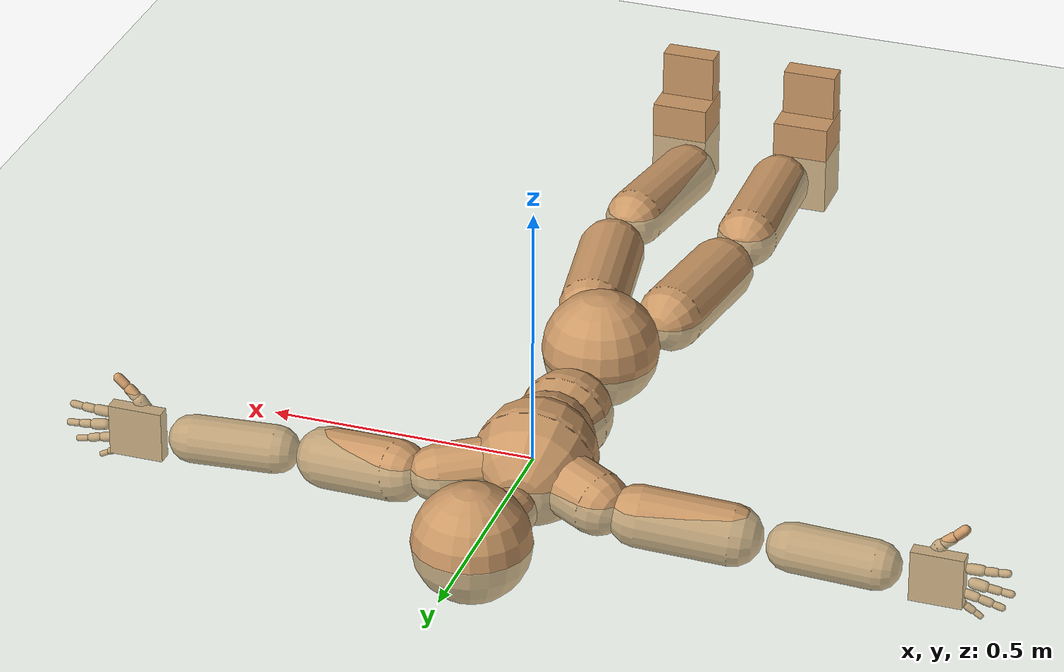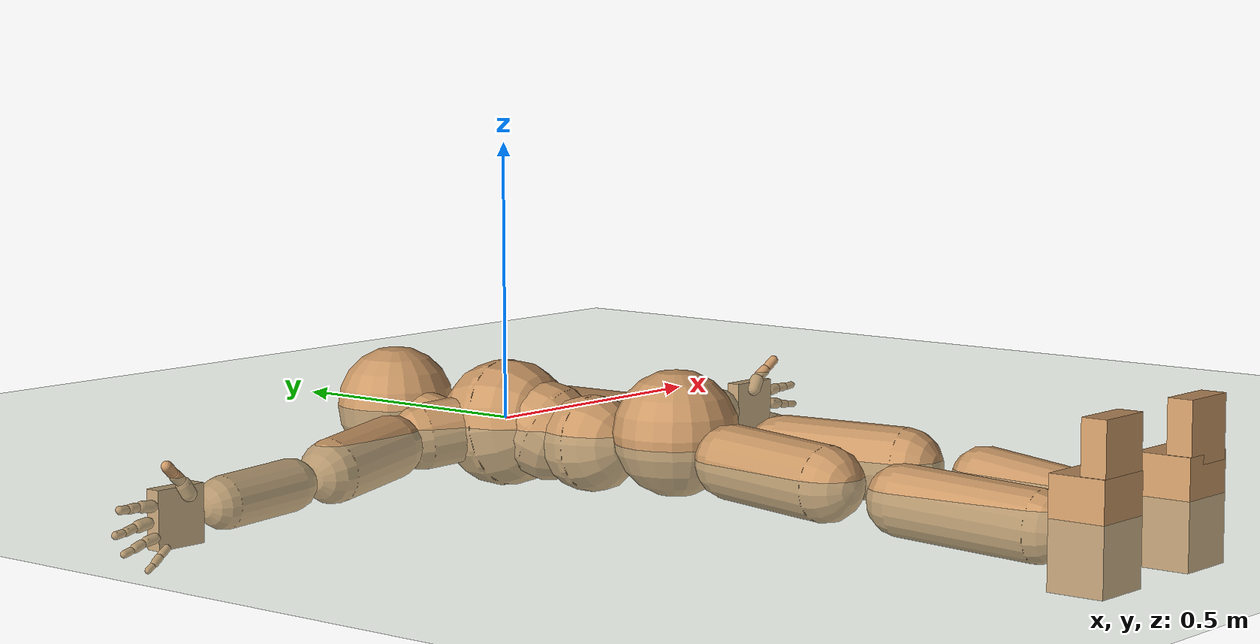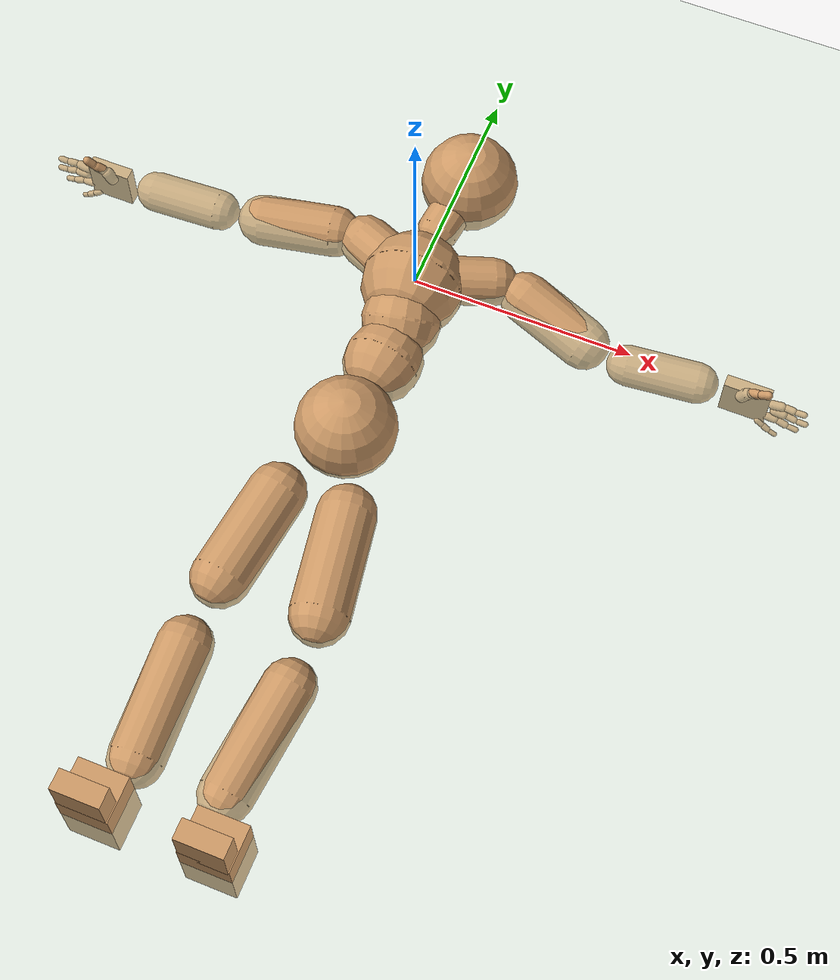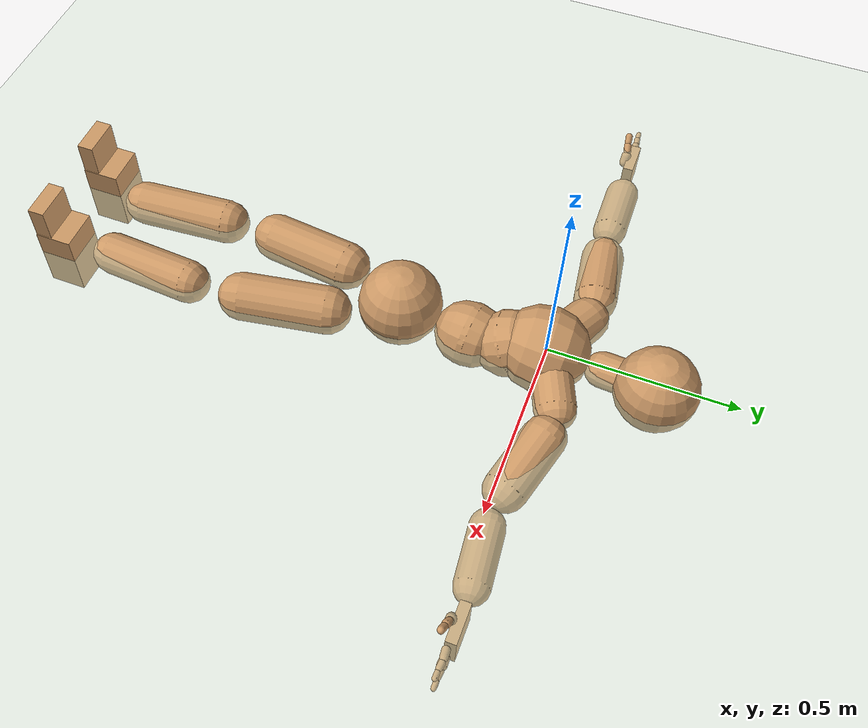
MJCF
<mujoco model="humanoid">
  <compiler coordinate="local"/>
  <default>
    <joint damping="0.0" armature="0.01" stiffness="0.0" limited="true"/>
    <geom conaffinity="1" condim="3" contype="7" margin="0.001" rgba="0.8 0.6 .4 1"/>
  </default>
  <asset>
    <texture type="skybox" builtin="gradient" rgb1=".4 .5 .6" rgb2="0 0 0" width="100" height="100"/>
    <texture builtin="flat" height="1278" mark="cross" markrgb="1 1 1" name="texgeom" random="0.01" rgb1="0.8 0.6 0.4" rgb2="0.8 0.6 0.4" type="cube" width="127"/>
    <texture builtin="checker" height="100" name="texplane" rgb1="0 0 0" rgb2="0.8 0.8 0.8" type="2d" width="100"/>
    <material name="MatPlane" reflectance="0.5" shininess="1" specular="1" texrepeat="60 60" texture="texplane"/>
    <material name="geom" texture="texgeom" texuniform="true"/>
  </asset>
  <worldbody>
    <light cutoff="100" diffuse="1 1 1" dir="-0 0 -1.3" directional="true" exponent="1" pos="0 0 1.3" specular=".1 .1 .1"/>
    <geom conaffinity="1" condim="3" name="floor" pos="0 0 0" rgba="0.8 0.9 0.8 1" size="100 100 .2" type="plane" material="MatPlane"/>
    <body name="Pelvis" pos="0.0033 -0.3978 0.0134">
      <freejoint name="Pelvis"/>
      <geom type="sphere" contype="1" conaffinity="1" density="4629.6296296296305" size="0.1112" pos="0.0000 0.0000 0.0000" name="Pelvis"/>
      <body name="L_Hip" pos="0.063 -0.1008 -0.0246">
        <joint name="L_Hip_x" type="hinge" pos="0 0 0" axis="1 0 0" user="250 2.5 1 500 10 2" armature="0.01" range="-90.0000 90.0000" damping="0" stiffness="0"/>
        <joint name="L_Hip_y" type="hinge" pos="0 0 0" axis="0 1 0" user="250 2.5 1 500 10 2" armature="0.01" range="-90.0000 90.0000" damping="0" stiffness="0"/>
        <joint name="L_Hip_z" type="hinge" pos="0 0 0" axis="0 0 1" user="250 2.5 1 500 10 2" armature="0.01" range="-90.0000 90.0000" damping="0" stiffness="0"/>
        <geom type="capsule" contype="1" conaffinity="1" density="2040.816327" fromto="0.0125 -0.0763 -0.0008 0.0499 -0.3052 -0.0033" size="0.0651" name="L_Hip"/>
        <body name="L_Knee" pos="0.0623 -0.3815 -0.0041">
          <joint name="L_Knee_x" type="hinge" pos="0 0 0" axis="1 0 0" user="250 2.5 1 500 10 2" armature="0.01" range="-180.0000 180.0000" damping="0" stiffness="0"/>
          <joint name="L_Knee_y" type="hinge" pos="0 0 0" axis="0 1 0" user="250 2.5 1 500 10 2" armature="0.01" range="-5.6250 5.6250" damping="0" stiffness="0"/>
          <joint name="L_Knee_z" type="hinge" pos="0 0 0" axis="0 0 1" user="250 2.5 1 500 10 2" armature="0.01" range="-5.6250 5.6250" damping="0" stiffness="0"/>
          <geom type="capsule" contype="1" conaffinity="1" density="1234.567901" fromto="-0.0096 -0.0825 -0.0067 -0.0385 -0.3302 -0.0270" size="0.0579" name="L_Knee"/>
          <body name="L_Ankle" pos="-0.0481 -0.4127 -0.0337">
            <joint name="L_Ankle_x" type="hinge" pos="0 0 0" axis="1 0 0" user="150 2.5 1 500 10 2" armature="0.01" range="-90.0000 90.0000" damping="0" stiffness="0"/>
            <joint name="L_Ankle_y" type="hinge" pos="0 0 0" axis="0 1 0" user="150 2.5 1 500 10 2" armature="0.01" range="-90.0000 90.0000" damping="0" stiffness="0"/>
            <joint name="L_Ankle_z" type="hinge" pos="0 0 0" axis="0 0 1" user="150 2.5 1 500 10 2" armature="0.01" range="-90.0000 90.0000" damping="0" stiffness="0"/>
            <geom type="box" density="458.480626" pos="0.0462 -0.0299 0.0242" size="0.0551 0.0494 0.0916" quat="1.0000 0.0000 0.0000 0.0000" name="L_Ankle"/>
            <body name="L_Toe" pos="0.0538 -0.0602 0.1257">
              <joint name="L_Toe_x" type="hinge" pos="0 0 0" axis="1 0 0" user="150 1 1 500 1 1" armature="0.01" range="-90.0000 90.0000" damping="0" stiffness="0"/>
              <joint name="L_Toe_y" type="hinge" pos="0 0 0" axis="0 1 0" user="150 1 1 500 1 1" armature="0.01" range="-45.0000 45.0000" damping="0" stiffness="0"/>
              <joint name="L_Toe_z" type="hinge" pos="0 0 0" axis="0 0 1" user="150 1 1 500 1 1" armature="0.01" range="-45.0000 45.0000" damping="0" stiffness="0"/>
              <geom type="box" density="423.29257" pos="-0.0076 0.0031 0.0272" size="0.0524 0.0222 0.0532" quat="1.0000 0.0000 0.0000 0.0000" name="L_Toe"/>
            </body>
          </body>
        </body>
      </body>
      <body name="R_Hip" pos="-0.0679 -0.1138 -0.0178">
        <joint name="R_Hip_x" type="hinge" pos="0 0 0" axis="1 0 0" user="250 2.5 1 500 10 2" armature="0.01" range="-90.0000 90.0000" damping="0" stiffness="0"/>
        <joint name="R_Hip_y" type="hinge" pos="0 0 0" axis="0 1 0" user="250 2.5 1 500 10 2" armature="0.01" range="-90.0000 90.0000" damping="0" stiffness="0"/>
        <joint name="R_Hip_z" type="hinge" pos="0 0 0" axis="0 0 1" user="250 2.5 1 500 10 2" armature="0.01" range="-90.0000 90.0000" damping="0" stiffness="0"/>
        <geom type="capsule" contype="1" conaffinity="1" density="2040.816327" fromto="-0.0103 -0.0726 -0.0027 -0.0410 -0.2906 -0.0109" size="0.0645" name="R_Hip"/>
        <body name="R_Knee" pos="-0.0513 -0.3632 -0.0136">
          <joint name="R_Knee_x" type="hinge" pos="0 0 0" axis="1 0 0" user="250 2.5 1 500 10 2" armature="0.01" range="-180.0000 180.0000" damping="0" stiffness="0"/>
          <joint name="R_Knee_y" type="hinge" pos="0 0 0" axis="0 1 0" user="250 2.5 1 500 10 2" armature="0.01" range="-5.6250 5.6250" damping="0" stiffness="0"/>
          <joint name="R_Knee_z" type="hinge" pos="0 0 0" axis="0 0 1" user="250 2.5 1 500 10 2" armature="0.01" range="-5.6250 5.6250" damping="0" stiffness="0"/>
          <geom type="capsule" contype="1" conaffinity="1" density="1234.567901" fromto="0.0033 -0.0841 -0.0042 0.0130 -0.3365 -0.0167" size="0.0597" name="R_Knee"/>
          <body name="R_Ankle" pos="0.0163 -0.4206 -0.0209">
            <joint name="R_Ankle_x" type="hinge" pos="0 0 0" axis="1 0 0" user="150 1 1 500 10 2" armature="0.01" range="-90.0000 90.0000" damping="0" stiffness="0"/>
            <joint name="R_Ankle_y" type="hinge" pos="0 0 0" axis="0 1 0" user="150 1 1 500 10 2" armature="0.01" range="-90.0000 90.0000" damping="0" stiffness="0"/>
            <joint name="R_Ankle_z" type="hinge" pos="0 0 0" axis="0 0 1" user="150 1 1 500 10 2" armature="0.01" range="-90.0000 90.0000" damping="0" stiffness="0"/>
            <geom type="box" density="458.47228" pos="-0.0270 -0.0274 0.0142" size="0.0551 0.0494 0.0916" quat="1.0000 0.0000 0.0000 0.0000" name="R_Ankle"/>
            <body name="R_Toe" pos="-0.0433 -0.0602 0.1264">
              <joint name="R_Toe_x" type="hinge" pos="0 0 0" axis="1 0 0" user="150 1 1 500 1 1" armature="0.01" range="-90.0000 90.0000" damping="0" stiffness="0"/>
              <joint name="R_Toe_y" type="hinge" pos="0 0 0" axis="0 1 0" user="150 1 1 500 1 1" armature="0.01" range="-45.0000 45.0000" damping="0" stiffness="0"/>
              <joint name="R_Toe_z" type="hinge" pos="0 0 0" axis="0 0 1" user="150 1 1 500 1 1" armature="0.01" range="-45.0000 45.0000" damping="0" stiffness="0"/>
              <geom type="box" density="423.283154" pos="0.0163 0.0057 0.0165" size="0.0524 0.0222 0.0532" quat="1.0000 0.0000 0.0000 0.0000" name="R_Toe"/>
            </body>
          </body>
        </body>
      </body>
      <body name="Torso" pos="-0.0033 0.1209 -0.0354">
        <joint name="Torso_x" type="hinge" pos="0 0 0" axis="1 0 0" user="500 5 1 500 10 2" armature="0.01" range="-60.0000 60.0000" damping="0" stiffness="0"/>
        <joint name="Torso_y" type="hinge" pos="0 0 0" axis="0 1 0" user="500 5 1 500 10 2" armature="0.01" range="-60.0000 60.0000" damping="0" stiffness="0"/>
        <joint name="Torso_z" type="hinge" pos="0 0 0" axis="0 0 1" user="500 5 1 500 10 2" armature="0.01" range="-60.0000 60.0000" damping="0" stiffness="0"/>
        <geom type="capsule" contype="1" conaffinity="1" density="2040.816327" fromto="0.0057 0.0667 -0.0034 0.0070 0.0815 -0.0041" size="0.0861" name="Torso"/>
        <body name="Spine" pos="0.0127 0.1483 -0.0075">
          <joint name="Spine_x" type="hinge" pos="0 0 0" axis="1 0 0" user="500 5 1 500 10 2" armature="0.01" range="-60.0000 60.0000" damping="0" stiffness="0"/>
          <joint name="Spine_y" type="hinge" pos="0 0 0" axis="0 1 0" user="500 5 1 500 10 2" armature="0.01" range="-60.0000 60.0000" damping="0" stiffness="0"/>
          <joint name="Spine_z" type="hinge" pos="0 0 0" axis="0 0 1" user="500 5 1 500 10 2" armature="0.01" range="-60.0000 60.0000" damping="0" stiffness="0"/>
          <geom type="capsule" contype="1" conaffinity="1" density="2040.816327" fromto="-0.0058 0.0274 0.0140 -0.0070 0.0335 0.0171" size="0.0882" name="Spine"/>
          <body name="Chest" pos="-0.0128 0.0609 0.0311">
            <joint name="Chest_x" type="hinge" pos="0 0 0" axis="1 0 0" user="500 5 1 500 10 2" armature="0.01" range="-60.0000 60.0000" damping="0" stiffness="0"/>
            <joint name="Chest_y" type="hinge" pos="0 0 0" axis="0 1 0" user="500 5 1 500 10 2" armature="0.01" range="-60.0000 60.0000" damping="0" stiffness="0"/>
            <joint name="Chest_z" type="hinge" pos="0 0 0" axis="0 0 1" user="500 5 1 500 10 2" armature="0.01" range="-60.0000 60.0000" damping="0" stiffness="0"/>
            <geom type="capsule" contype="1" conaffinity="1" density="2040.816327" fromto="-0.0029 0.0551 -0.0073 -0.0035 0.0673 -0.0089" size="0.1145" name="Chest"/>
            <body name="Neck" pos="-0.0148 0.1819 -0.0311">
              <joint name="Neck_x" type="hinge" pos="0 0 0" axis="1 0 0" user="150 1 1 250 50 4" armature="0.01" range="-180.0000 180.0000" damping="0" stiffness="0"/>
              <joint name="Neck_y" type="hinge" pos="0 0 0" axis="0 1 0" user="150 1 1 250 50 4" armature="0.01" range="-180.0000 180.0000" damping="0" stiffness="0"/>
              <joint name="Neck_z" type="hinge" pos="0 0 0" axis="0 0 1" user="150 1 1 250 50 4" armature="0.01" range="-180.0000 180.0000" damping="0" stiffness="0"/>
              <geom type="capsule" contype="1" conaffinity="1" density="1000" fromto="0.0057 0.0355 0.0049 0.0228 0.1419 0.0197" size="0.0477" name="Neck"/>
              <body name="Head" pos="0.0285 0.1774 0.0246">
                <joint name="Head_x" type="hinge" pos="0 0 0" axis="1 0 0" user="150 1 1 250 50 4" armature="0.01" range="-90.0000 90.0000" damping="0" stiffness="0"/>
                <joint name="Head_y" type="hinge" pos="0 0 0" axis="0 1 0" user="150 1 1 250 50 4" armature="0.01" range="-90.0000 90.0000" damping="0" stiffness="0"/>
                <joint name="Head_z" type="hinge" pos="0 0 0" axis="0 0 1" user="150 1 1 250 50 4" armature="0.01" range="-90.0000 90.0000" damping="0" stiffness="0"/>
                <geom type="sphere" contype="1" conaffinity="1" density="1000" size="0.1095" pos="0.0000 0.0000 0.0000" name="Head"/>
              </body>
            </body>
            <body name="L_Thorax" pos="0.0495 0.0931 -0.0055">
              <joint name="L_Thorax_x" type="hinge" pos="0 0 0" axis="1 0 0" user="200 2 1 500 50 4" armature="0.01" range="-180.0000 180.0000" damping="0" stiffness="0"/>
              <joint name="L_Thorax_y" type="hinge" pos="0 0 0" axis="0 1 0" user="200 2 1 500 50 4" armature="0.01" range="-180.0000 180.0000" damping="0" stiffness="0"/>
              <joint name="L_Thorax_z" type="hinge" pos="0 0 0" axis="0 0 1" user="200 2 1 500 50 4" armature="0.01" range="-180.0000 180.0000" damping="0" stiffness="0"/>
              <geom type="capsule" contype="1" conaffinity="1" density="1000" fromto="0.0266 0.0117 -0.0036 0.1064 0.0467 -0.0143" size="0.0542" name="L_Thorax"/>
              <body name="L_Shoulder" pos="0.133 0.0583 -0.0179">
                <joint name="L_Shoulder_x" type="hinge" pos="0 0 0" axis="1 0 0" user="200 2 1 500 50 4" armature="0.01" range="-180.0000 180.0000" damping="0" stiffness="0"/>
                <joint name="L_Shoulder_y" type="hinge" pos="0 0 0" axis="0 1 0" user="200 2 1 500 50 4" armature="0.01" range="-180.0000 180.0000" damping="0" stiffness="0"/>
                <joint name="L_Shoulder_z" type="hinge" pos="0 0 0" axis="0 0 1" user="200 2 1 500 50 4" armature="0.01" range="-180.0000 180.0000" damping="0" stiffness="0"/>
                <geom type="capsule" contype="1" conaffinity="1" density="1000" fromto="0.0519 -0.0153 -0.0097 0.2074 -0.0610 -0.0387" size="0.0577" name="L_Shoulder"/>
                <body name="L_Elbow" pos="0.2593 -0.0763 -0.0483">
                  <joint name="L_Elbow_x" type="hinge" pos="0 0 0" axis="1 0 0" user="150 1 1 150 10 2" armature="0.01" range="-720.0000 720.0000" damping="0" stiffness="0"/>
                  <joint name="L_Elbow_y" type="hinge" pos="0 0 0" axis="0 1 0" user="150 1 1 150 10 2" armature="0.01" range="-720.0000 720.0000" damping="0" stiffness="0"/>
                  <joint name="L_Elbow_z" type="hinge" pos="0 0 0" axis="0 0 1" user="150 1 1 150 10 2" armature="0.01" range="-720.0000 720.0000" damping="0" stiffness="0"/>
                  <geom type="capsule" contype="1" conaffinity="1" density="1000" fromto="0.0528 0.0052 0.0002 0.2111 0.0206 0.0010" size="0.0454" name="L_Elbow"/>
                  <body name="L_Wrist" pos="0.2639 0.0258 0.0012">
                    <joint name="L_Wrist_x" type="hinge" pos="0 0 0" axis="1 0 0" user="100 1 1 150 1 1" armature="0.01" range="-180.0000 180.0000" damping="0" stiffness="0"/>
                    <joint name="L_Wrist_y" type="hinge" pos="0 0 0" axis="0 1 0" user="100 1 1 150 1 1" armature="0.01" range="-180.0000 180.0000" damping="0" stiffness="0"/>
                    <joint name="L_Wrist_z" type="hinge" pos="0 0 0" axis="0 0 1" user="100 1 1 150 1 1" armature="0.01" range="-180.0000 180.0000" damping="0" stiffness="0"/>
                    <geom type="box" density="1215.894212" pos="0.0564 -0.0015 -0.0028" size="0.0521 0.0139 0.0503" quat="1.0000 0.0000 0.0000 0.0000" name="L_Wrist"/>
                    <body name="L_Index1" pos="0.1096 -0.0086 0.0214">
                      <joint name="L_Index1_x" type="hinge" pos="0 0 0" axis="1 0 0" user="100 10 1 150" armature="0.01" range="-180.0000 180.0000" damping="0" stiffness="0"/>
                      <joint name="L_Index1_y" type="hinge" pos="0 0 0" axis="0 1 0" user="100 10 1 150" armature="0.01" range="-180.0000 180.0000" damping="0" stiffness="0"/>
                      <joint name="L_Index1_z" type="hinge" pos="0 0 0" axis="0 0 1" user="100 10 1 150" armature="0.01" range="-180.0000 180.0000" damping="0" stiffness="0"/>
                      <geom type="capsule" contype="1" conaffinity="1" density="1000" fromto="0.0067 0.0005 0.0006 0.0268 0.0021 0.0023" size="0.0101" name="L_Index1"/>
                      <body name="L_Index2" pos="0.0335 0.0027 0.0029">
                        <joint name="L_Index2_x" type="hinge" pos="0 0 0" axis="1 0 0" user="100 10 1 150" armature="0.01" range="-180.0000 180.0000" damping="0" stiffness="0"/>
                        <joint name="L_Index2_y" type="hinge" pos="0 0 0" axis="0 1 0" user="100 10 1 150" armature="0.01" range="-180.0000 180.0000" damping="0" stiffness="0"/>
                        <joint name="L_Index2_z" type="hinge" pos="0 0 0" axis="0 0 1" user="100 10 1 150" armature="0.01" range="-180.0000 180.0000" damping="0" stiffness="0"/>
                        <geom type="capsule" contype="1" conaffinity="1" density="1000" fromto="0.0047 -0.0005 -0.0001 0.0188 -0.0020 -0.0002" size="0.0083" name="L_Index2"/>
                        <body name="L_Index3" pos="0.0235 -0.0025 -0.0003">
                          <joint name="L_Index3_x" type="hinge" pos="0 0 0" axis="1 0 0" user="100 10 1 150" armature="0.01" range="-180.0000 180.0000" damping="0" stiffness="0"/>
                          <joint name="L_Index3_y" type="hinge" pos="0 0 0" axis="0 1 0" user="100 10 1 150" armature="0.01" range="-180.0000 180.0000" damping="0" stiffness="0"/>
                          <joint name="L_Index3_z" type="hinge" pos="0 0 0" axis="0 0 1" user="100 10 1 150" armature="0.01" range="-180.0000 180.0000" damping="0" stiffness="0"/>
                          <geom type="capsule" contype="1" conaffinity="1" density="1000" fromto="0.0051 -0.0001 0.0003 0.0204 -0.0004 0.0014" size="0.0069" name="L_Index3"/>
                        </body>
                      </body>
                    </body>
                    <body name="L_Middle1" pos="0.1178 -0.006 -0.0042">
                      <joint name="L_Middle1_x" type="hinge" pos="0 0 0" axis="1 0 0" user="100 10 1 150" armature="0.01" range="-180.0000 180.0000" damping="0" stiffness="0"/>
                      <joint name="L_Middle1_y" type="hinge" pos="0 0 0" axis="0 1 0" user="100 10 1 150" armature="0.01" range="-180.0000 180.0000" damping="0" stiffness="0"/>
                      <joint name="L_Middle1_z" type="hinge" pos="0 0 0" axis="0 0 1" user="100 10 1 150" armature="0.01" range="-180.0000 180.0000" damping="0" stiffness="0"/>
                      <geom type="capsule" contype="1" conaffinity="1" density="1000" fromto="0.0064 0.0002 -0.0008 0.0257 0.0008 -0.0033" size="0.0104" name="L_Middle1"/>
                      <body name="L_Middle2" pos="0.0321 0.001 -0.0042">
                        <joint name="L_Middle2_x" type="hinge" pos="0 0 0" axis="1 0 0" user="100 10 1 150" armature="0.01" range="-180.0000 180.0000" damping="0" stiffness="0"/>
                        <joint name="L_Middle2_y" type="hinge" pos="0 0 0" axis="0 1 0" user="100 10 1 150" armature="0.01" range="-180.0000 180.0000" damping="0" stiffness="0"/>
                        <joint name="L_Middle2_z" type="hinge" pos="0 0 0" axis="0 0 1" user="100 10 1 150" armature="0.01" range="-180.0000 180.0000" damping="0" stiffness="0"/>
                        <geom type="capsule" contype="1" conaffinity="1" density="1000" fromto="0.0049 -0.0004 -0.0009 0.0196 -0.0018 -0.0035" size="0.0077" name="L_Middle2"/>
                        <body name="L_Middle3" pos="0.0244 -0.0022 -0.0044">
                          <joint name="L_Middle3_x" type="hinge" pos="0 0 0" axis="1 0 0" user="100 10 1 150" armature="0.01" range="-180.0000 180.0000" damping="0" stiffness="0"/>
                          <joint name="L_Middle3_y" type="hinge" pos="0 0 0" axis="0 1 0" user="100 10 1 150" armature="0.01" range="-180.0000 180.0000" damping="0" stiffness="0"/>
                          <joint name="L_Middle3_z" type="hinge" pos="0 0 0" axis="0 0 1" user="100 10 1 150" armature="0.01" range="-180.0000 180.0000" damping="0" stiffness="0"/>
                          <geom type="capsule" contype="1" conaffinity="1" density="1000" fromto="0.0053 -0.0000 -0.0005 0.0212 -0.0002 -0.0019" size="0.0066" name="L_Middle3"/>
                        </body>
                      </body>
                    </body>
                    <body name="L_Pinky1" pos="0.091 -0.0154 -0.0476">
                      <joint name="L_Pinky1_x" type="hinge" pos="0 0 0" axis="1 0 0" user="100 10 1 150" armature="0.01" range="-180.0000 180.0000" damping="0" stiffness="0"/>
                      <joint name="L_Pinky1_y" type="hinge" pos="0 0 0" axis="0 1 0" user="100 10 1 150" armature="0.01" range="-180.0000 180.0000" damping="0" stiffness="0"/>
                      <joint name="L_Pinky1_z" type="hinge" pos="0 0 0" axis="0 0 1" user="100 10 1 150" armature="0.01" range="-180.0000 180.0000" damping="0" stiffness="0"/>
                      <geom type="capsule" contype="1" conaffinity="1" density="1000" fromto="0.0034 -0.0003 -0.0025 0.0136 -0.0011 -0.0100" size="0.0073" name="L_Pinky1"/>
                      <body name="L_Pinky2" pos="0.017 -0.0014 -0.0126">
                        <joint name="L_Pinky2_x" type="hinge" pos="0 0 0" axis="1 0 0" user="100 10 1 150" armature="0.01" range="-180.0000 180.0000" damping="0" stiffness="0"/>
                        <joint name="L_Pinky2_y" type="hinge" pos="0 0 0" axis="0 1 0" user="100 10 1 150" armature="0.01" range="-180.0000 180.0000" damping="0" stiffness="0"/>
                        <joint name="L_Pinky2_z" type="hinge" pos="0 0 0" axis="0 0 1" user="100 10 1 150" armature="0.01" range="-180.0000 180.0000" damping="0" stiffness="0"/>
                        <geom type="capsule" contype="1" conaffinity="1" density="1000" fromto="0.0033 -0.0004 -0.0023 0.0133 -0.0016 -0.0092" size="0.007" name="L_Pinky2"/>
                        <body name="L_Pinky3" pos="0.0166 -0.002 -0.0115">
                          <joint name="L_Pinky3_x" type="hinge" pos="0 0 0" axis="1 0 0" user="100 10 1 150" armature="0.01" range="-180.0000 180.0000" damping="0" stiffness="0"/>
                          <joint name="L_Pinky3_y" type="hinge" pos="0 0 0" axis="0 1 0" user="100 10 1 150" armature="0.01" range="-180.0000 180.0000" damping="0" stiffness="0"/>
                          <joint name="L_Pinky3_z" type="hinge" pos="0 0 0" axis="0 0 1" user="100 10 1 150" armature="0.01" range="-180.0000 180.0000" damping="0" stiffness="0"/>
                          <geom type="capsule" contype="1" conaffinity="1" density="1000" fromto="0.0037 -0.0000 -0.0019 0.0149 -0.0000 -0.0076" size="0.0053" name="L_Pinky3"/>
                        </body>
                      </body>
                    </body>
                    <body name="L_Ring1" pos="0.1053 -0.0093 -0.0298">
                      <joint name="L_Ring1_x" type="hinge" pos="0 0 0" axis="1 0 0" user="100 10 1 150" armature="0.01" range="-180.0000 180.0000" damping="0" stiffness="0"/>
                      <joint name="L_Ring1_y" type="hinge" pos="0 0 0" axis="0 1 0" user="100 10 1 150" armature="0.01" range="-180.0000 180.0000" damping="0" stiffness="0"/>
                      <joint name="L_Ring1_z" type="hinge" pos="0 0 0" axis="0 0 1" user="100 10 1 150" armature="0.01" range="-180.0000 180.0000" damping="0" stiffness="0"/>
                      <geom type="capsule" contype="1" conaffinity="1" density="1000" fromto="0.0060 0.0003 -0.0011 0.0239 0.0014 -0.0044" size="0.0088" name="L_Ring1"/>
                      <body name="L_Ring2" pos="0.0299 0.0017 -0.0055">
                        <joint name="L_Ring2_x" type="hinge" pos="0 0 0" axis="1 0 0" user="100 10 1 150" armature="0.01" range="-180.0000 180.0000" damping="0" stiffness="0"/>
                        <joint name="L_Ring2_y" type="hinge" pos="0 0 0" axis="0 1 0" user="100 10 1 150" armature="0.01" range="-180.0000 180.0000" damping="0" stiffness="0"/>
                        <joint name="L_Ring2_z" type="hinge" pos="0 0 0" axis="0 0 1" user="100 10 1 150" armature="0.01" range="-180.0000 180.0000" damping="0" stiffness="0"/>
                        <geom type="capsule" contype="1" conaffinity="1" density="1000" fromto="0.0048 -0.0003 -0.0015 0.0192 -0.0014 -0.0060" size="0.008" name="L_Ring2"/>
                        <body name="L_Ring3" pos="0.024 -0.0017 -0.0075">
                          <joint name="L_Ring3_x" type="hinge" pos="0 0 0" axis="1 0 0" user="100 10 1 150" armature="0.01" range="-180.0000 180.0000" damping="0" stiffness="0"/>
                          <joint name="L_Ring3_y" type="hinge" pos="0 0 0" axis="0 1 0" user="100 10 1 150" armature="0.01" range="-180.0000 180.0000" damping="0" stiffness="0"/>
                          <joint name="L_Ring3_z" type="hinge" pos="0 0 0" axis="0 0 1" user="100 10 1 150" armature="0.01" range="-180.0000 180.0000" damping="0" stiffness="0"/>
                          <geom type="capsule" contype="1" conaffinity="1" density="1000" fromto="0.0052 0.0001 -0.0011 0.0208 0.0002 -0.0044" size="0.0062" name="L_Ring3"/>
                        </body>
                      </body>
                    </body>
                    <body name="L_Thumb1" pos="0.0436 -0.0205 0.029">
                      <joint name="L_Thumb1_x" type="hinge" pos="0 0 0" axis="1 0 0" user="100 10 1 150" armature="0.01" range="-180.0000 180.0000" damping="0" stiffness="0"/>
                      <joint name="L_Thumb1_y" type="hinge" pos="0 0 0" axis="0 1 0" user="100 10 1 150" armature="0.01" range="-180.0000 180.0000" damping="0" stiffness="0"/>
                      <joint name="L_Thumb1_z" type="hinge" pos="0 0 0" axis="0 0 1" user="100 10 1 150" armature="0.01" range="-180.0000 180.0000" damping="0" stiffness="0"/>
                      <geom type="capsule" contype="1" conaffinity="1" density="1000" fromto="0.0036 0.0003 0.0054 0.0144 0.0012 0.0217" size="0.0134" name="L_Thumb1"/>
                      <body name="L_Thumb2" pos="0.018 0.0016 0.0271">
                        <joint name="L_Thumb2_x" type="hinge" pos="0 0 0" axis="1 0 0" user="100 10 1 150" armature="0.01" range="-180.0000 180.0000" damping="0" stiffness="0"/>
                        <joint name="L_Thumb2_y" type="hinge" pos="0 0 0" axis="0 1 0" user="100 10 1 150" armature="0.01" range="-180.0000 180.0000" damping="0" stiffness="0"/>
                        <joint name="L_Thumb2_z" type="hinge" pos="0 0 0" axis="0 0 1" user="100 10 1 150" armature="0.01" range="-180.0000 180.0000" damping="0" stiffness="0"/>
                        <geom type="capsule" contype="1" conaffinity="1" density="1000" fromto="0.0044 -0.0011 0.0033 0.0174 -0.0044 0.0130" size="0.0106" name="L_Thumb2"/>
                        <body name="L_Thumb3" pos="0.0218 -0.0055 0.0163">
                          <joint name="L_Thumb3_x" type="hinge" pos="0 0 0" axis="1 0 0" user="100 10 1 150" armature="0.01" range="-180.0000 180.0000" damping="0" stiffness="0"/>
                          <joint name="L_Thumb3_y" type="hinge" pos="0 0 0" axis="0 1 0" user="100 10 1 150" armature="0.01" range="-180.0000 180.0000" damping="0" stiffness="0"/>
                          <joint name="L_Thumb3_z" type="hinge" pos="0 0 0" axis="0 0 1" user="100 10 1 150" armature="0.01" range="-180.0000 180.0000" damping="0" stiffness="0"/>
                          <geom type="capsule" contype="1" conaffinity="1" density="1000" fromto="0.0048 -0.0007 0.0037 0.0190 -0.0028 0.0146" size="0.0094" name="L_Thumb3"/>
                        </body>
                      </body>
                    </body>
                  </body>
                </body>
              </body>
            </body>
            <body name="R_Thorax" pos="-0.0538 0.0922 -0.0119">
              <joint name="R_Thorax_x" type="hinge" pos="0 0 0" axis="1 0 0" user="200 2 1 150 10 2" armature="0.01" range="-180.0000 180.0000" damping="0" stiffness="0"/>
              <joint name="R_Thorax_y" type="hinge" pos="0 0 0" axis="0 1 0" user="200 2 1 150 10 2" armature="0.01" range="-180.0000 180.0000" damping="0" stiffness="0"/>
              <joint name="R_Thorax_z" type="hinge" pos="0 0 0" axis="0 0 1" user="200 2 1 150 10 2" armature="0.01" range="-180.0000 180.0000" damping="0" stiffness="0"/>
              <geom type="capsule" contype="1" conaffinity="1" density="1000" fromto="-0.0230 0.0108 -0.0032 -0.0918 0.0433 -0.0126" size="0.0595" name="R_Thorax"/>
              <body name="R_Shoulder" pos="-0.1148 0.0541 -0.0158">
                <joint name="R_Shoulder_x" type="hinge" pos="0 0 0" axis="1 0 0" user="200 2 1 250 10 2" armature="0.01" range="-180.0000 180.0000" damping="0" stiffness="0"/>
                <joint name="R_Shoulder_y" type="hinge" pos="0 0 0" axis="0 1 0" user="200 2 1 250 10 2" armature="0.01" range="-180.0000 180.0000" damping="0" stiffness="0"/>
                <joint name="R_Shoulder_z" type="hinge" pos="0 0 0" axis="0 0 1" user="200 2 1 250 10 2" armature="0.01" range="-180.0000 180.0000" damping="0" stiffness="0"/>
                <geom type="capsule" contype="1" conaffinity="1" density="1000" fromto="-0.0556 -0.0073 -0.0060 -0.2223 -0.0291 -0.0241" size="0.0576" name="R_Shoulder"/>
                <body name="R_Elbow" pos="-0.2779 -0.0364 -0.0301">
                  <joint name="R_Elbow_x" type="hinge" pos="0 0 0" axis="1 0 0" user="150 1 1 150 10 2" armature="0.01" range="-720.0000 720.0000" damping="0" stiffness="0"/>
                  <joint name="R_Elbow_y" type="hinge" pos="0 0 0" axis="0 1 0" user="150 1 1 150 10 2" armature="0.01" range="-720.0000 720.0000" damping="0" stiffness="0"/>
                  <joint name="R_Elbow_z" type="hinge" pos="0 0 0" axis="0 0 1" user="150 1 1 150 10 2" armature="0.01" range="-720.0000 720.0000" damping="0" stiffness="0"/>
                  <geom type="capsule" contype="1" conaffinity="1" density="1000" fromto="-0.0522 -0.0011 -0.0025 -0.2086 -0.0045 -0.0100" size="0.0458" name="R_Elbow"/>
                  <body name="R_Wrist" pos="-0.2608 -0.0056 -0.0125">
                    <joint name="R_Wrist_x" type="hinge" pos="0 0 0" axis="1 0 0" user="100 1 1 150 1 1" armature="0.01" range="-180.0000 180.0000" damping="0" stiffness="0"/>
                    <joint name="R_Wrist_y" type="hinge" pos="0 0 0" axis="0 1 0" user="100 1 1 150 1 1" armature="0.01" range="-180.0000 180.0000" damping="0" stiffness="0"/>
                    <joint name="R_Wrist_z" type="hinge" pos="0 0 0" axis="0 0 1" user="100 1 1 150 1 1" armature="0.01" range="-180.0000 180.0000" damping="0" stiffness="0"/>
                    <geom type="box" density="1243.771054" pos="-0.0579 -0.0048 -0.0030" size="0.0492 0.0139 0.0503" quat="1.0000 0.0000 0.0000 0.0000" name="R_Wrist"/>
                    <body name="R_Index1" pos="-0.1077 -0.0119 0.0213">
                      <joint name="R_Index1_x" type="hinge" pos="0 0 0" axis="1 0 0" user="100 10 1 150" armature="0.01" range="-180.0000 180.0000" damping="0" stiffness="0"/>
                      <joint name="R_Index1_y" type="hinge" pos="0 0 0" axis="0 1 0" user="100 10 1 150" armature="0.01" range="-180.0000 180.0000" damping="0" stiffness="0"/>
                      <joint name="R_Index1_z" type="hinge" pos="0 0 0" axis="0 0 1" user="100 10 1 150" armature="0.01" range="-180.0000 180.0000" damping="0" stiffness="0"/>
                      <geom type="capsule" contype="1" conaffinity="1" density="1000" fromto="-0.0067 0.0005 0.0006 -0.0268 0.0021 0.0023" size="0.0101" name="R_Index1"/>
                      <body name="R_Index2" pos="-0.0335 0.0027 0.0029">
                        <joint name="R_Index2_x" type="hinge" pos="0 0 0" axis="1 0 0" user="100 10 1 150" armature="0.01" range="-180.0000 180.0000" damping="0" stiffness="0"/>
                        <joint name="R_Index2_y" type="hinge" pos="0 0 0" axis="0 1 0" user="100 10 1 150" armature="0.01" range="-180.0000 180.0000" damping="0" stiffness="0"/>
                        <joint name="R_Index2_z" type="hinge" pos="0 0 0" axis="0 0 1" user="100 10 1 150" armature="0.01" range="-180.0000 180.0000" damping="0" stiffness="0"/>
                        <geom type="capsule" contype="1" conaffinity="1" density="1000" fromto="-0.0047 -0.0005 -0.0001 -0.0188 -0.0020 -0.0002" size="0.0083" name="R_Index2"/>
                        <body name="R_Index3" pos="-0.0235 -0.0025 -0.0003">
                          <joint name="R_Index3_x" type="hinge" pos="0 0 0" axis="1 0 0" user="100 10 1 150" armature="0.01" range="-180.0000 180.0000" damping="0" stiffness="0"/>
                          <joint name="R_Index3_y" type="hinge" pos="0 0 0" axis="0 1 0" user="100 10 1 150" armature="0.01" range="-180.0000 180.0000" damping="0" stiffness="0"/>
                          <joint name="R_Index3_z" type="hinge" pos="0 0 0" axis="0 0 1" user="100 10 1 150" armature="0.01" range="-180.0000 180.0000" damping="0" stiffness="0"/>
                          <geom type="capsule" contype="1" conaffinity="1" density="1000" fromto="-0.0043 -0.0001 0.0003 -0.0172 -0.0004 0.0014" size="0.0072" name="R_Index3"/>
                        </body>
                      </body>
                    </body>
                    <body name="R_Middle1" pos="-0.1159 -0.0093 -0.0044">
                      <joint name="R_Middle1_x" type="hinge" pos="0 0 0" axis="1 0 0" user="100 10 1 150" armature="0.01" range="-180.0000 180.0000" damping="0" stiffness="0"/>
                      <joint name="R_Middle1_y" type="hinge" pos="0 0 0" axis="0 1 0" user="100 10 1 150" armature="0.01" range="-180.0000 180.0000" damping="0" stiffness="0"/>
                      <joint name="R_Middle1_z" type="hinge" pos="0 0 0" axis="0 0 1" user="100 10 1 150" armature="0.01" range="-180.0000 180.0000" damping="0" stiffness="0"/>
                      <geom type="capsule" contype="1" conaffinity="1" density="1000" fromto="-0.0064 0.0002 -0.0008 -0.0257 0.0008 -0.0033" size="0.0104" name="R_Middle1"/>
                      <body name="R_Middle2" pos="-0.0321 0.001 -0.0042">
                        <joint name="R_Middle2_x" type="hinge" pos="0 0 0" axis="1 0 0" user="100 10 1 150" armature="0.01" range="-180.0000 180.0000" damping="0" stiffness="0"/>
                        <joint name="R_Middle2_y" type="hinge" pos="0 0 0" axis="0 1 0" user="100 10 1 150" armature="0.01" range="-180.0000 180.0000" damping="0" stiffness="0"/>
                        <joint name="R_Middle2_z" type="hinge" pos="0 0 0" axis="0 0 1" user="100 10 1 150" armature="0.01" range="-180.0000 180.0000" damping="0" stiffness="0"/>
                        <geom type="capsule" contype="1" conaffinity="1" density="1000" fromto="-0.0049 -0.0004 -0.0009 -0.0196 -0.0018 -0.0035" size="0.0077" name="R_Middle2"/>
                        <body name="R_Middle3" pos="-0.0244 -0.0022 -0.0044">
                          <joint name="R_Middle3_x" type="hinge" pos="0 0 0" axis="1 0 0" user="100 10 1 150" armature="0.01" range="-180.0000 180.0000" damping="0" stiffness="0"/>
                          <joint name="R_Middle3_y" type="hinge" pos="0 0 0" axis="0 1 0" user="100 10 1 150" armature="0.01" range="-180.0000 180.0000" damping="0" stiffness="0"/>
                          <joint name="R_Middle3_z" type="hinge" pos="0 0 0" axis="0 0 1" user="100 10 1 150" armature="0.01" range="-180.0000 180.0000" damping="0" stiffness="0"/>
                          <geom type="capsule" contype="1" conaffinity="1" density="1000" fromto="-0.0045 -0.0000 -0.0005 -0.0180 -0.0002 -0.0019" size="0.0069" name="R_Middle3"/>
                        </body>
                      </body>
                    </body>
                    <body name="R_Pinky1" pos="-0.089 -0.0187 -0.0478">
                      <joint name="R_Pinky1_x" type="hinge" pos="0 0 0" axis="1 0 0" user="100 10 1 150" armature="0.01" range="-180.0000 180.0000" damping="0" stiffness="0"/>
                      <joint name="R_Pinky1_y" type="hinge" pos="0 0 0" axis="0 1 0" user="100 10 1 150" armature="0.01" range="-180.0000 180.0000" damping="0" stiffness="0"/>
                      <joint name="R_Pinky1_z" type="hinge" pos="0 0 0" axis="0 0 1" user="100 10 1 150" armature="0.01" range="-180.0000 180.0000" damping="0" stiffness="0"/>
                      <geom type="capsule" contype="1" conaffinity="1" density="1000" fromto="-0.0034 -0.0003 -0.0025 -0.0136 -0.0011 -0.0100" size="0.0073" name="R_Pinky1"/>
                      <body name="R_Pinky2" pos="-0.017 -0.0014 -0.0126">
                        <joint name="R_Pinky2_x" type="hinge" pos="0 0 0" axis="1 0 0" user="100 10 1 150" armature="0.01" range="-180.0000 180.0000" damping="0" stiffness="0"/>
                        <joint name="R_Pinky2_y" type="hinge" pos="0 0 0" axis="0 1 0" user="100 10 1 150" armature="0.01" range="-180.0000 180.0000" damping="0" stiffness="0"/>
                        <joint name="R_Pinky2_z" type="hinge" pos="0 0 0" axis="0 0 1" user="100 10 1 150" armature="0.01" range="-180.0000 180.0000" damping="0" stiffness="0"/>
                        <geom type="capsule" contype="1" conaffinity="1" density="1000" fromto="-0.0033 -0.0004 -0.0023 -0.0133 -0.0016 -0.0092" size="0.007" name="R_Pinky2"/>
                        <body name="R_Pinky3" pos="-0.0166 -0.002 -0.0115">
                          <joint name="R_Pinky3_x" type="hinge" pos="0 0 0" axis="1 0 0" user="100 10 1 150" armature="0.01" range="-180.0000 180.0000" damping="0" stiffness="0"/>
                          <joint name="R_Pinky3_y" type="hinge" pos="0 0 0" axis="0 1 0" user="100 10 1 150" armature="0.01" range="-180.0000 180.0000" damping="0" stiffness="0"/>
                          <joint name="R_Pinky3_z" type="hinge" pos="0 0 0" axis="0 0 1" user="100 10 1 150" armature="0.01" range="-180.0000 180.0000" damping="0" stiffness="0"/>
                          <geom type="capsule" contype="1" conaffinity="1" density="1000" fromto="-0.0029 -0.0000 -0.0019 -0.0117 -0.0000 -0.0076" size="0.0055" name="R_Pinky3"/>
                        </body>
                      </body>
                    </body>
                    <body name="R_Ring1" pos="-0.1034 -0.0126 -0.03">
                      <joint name="R_Ring1_x" type="hinge" pos="0 0 0" axis="1 0 0" user="100 10 1 150" armature="0.01" range="-180.0000 180.0000" damping="0" stiffness="0"/>
                      <joint name="R_Ring1_y" type="hinge" pos="0 0 0" axis="0 1 0" user="100 10 1 150" armature="0.01" range="-180.0000 180.0000" damping="0" stiffness="0"/>
                      <joint name="R_Ring1_z" type="hinge" pos="0 0 0" axis="0 0 1" user="100 10 1 150" armature="0.01" range="-180.0000 180.0000" damping="0" stiffness="0"/>
                      <geom type="capsule" contype="1" conaffinity="1" density="1000" fromto="-0.0060 0.0003 -0.0011 -0.0239 0.0014 -0.0044" size="0.0088" name="R_Ring1"/>
                      <body name="R_Ring2" pos="-0.0299 0.0017 -0.0055">
                        <joint name="R_Ring2_x" type="hinge" pos="0 0 0" axis="1 0 0" user="100 10 1 150" armature="0.01" range="-180.0000 180.0000" damping="0" stiffness="0"/>
                        <joint name="R_Ring2_y" type="hinge" pos="0 0 0" axis="0 1 0" user="100 10 1 150" armature="0.01" range="-180.0000 180.0000" damping="0" stiffness="0"/>
                        <joint name="R_Ring2_z" type="hinge" pos="0 0 0" axis="0 0 1" user="100 10 1 150" armature="0.01" range="-180.0000 180.0000" damping="0" stiffness="0"/>
                        <geom type="capsule" contype="1" conaffinity="1" density="1000" fromto="-0.0048 -0.0003 -0.0015 -0.0192 -0.0014 -0.0060" size="0.008" name="R_Ring2"/>
                        <body name="R_Ring3" pos="-0.024 -0.0017 -0.0075">
                          <joint name="R_Ring3_x" type="hinge" pos="0 0 0" axis="1 0 0" user="100 10 1 150" armature="0.01" range="-180.0000 180.0000" damping="0" stiffness="0"/>
                          <joint name="R_Ring3_y" type="hinge" pos="0 0 0" axis="0 1 0" user="100 10 1 150" armature="0.01" range="-180.0000 180.0000" damping="0" stiffness="0"/>
                          <joint name="R_Ring3_z" type="hinge" pos="0 0 0" axis="0 0 1" user="100 10 1 150" armature="0.01" range="-180.0000 180.0000" damping="0" stiffness="0"/>
                          <geom type="capsule" contype="1" conaffinity="1" density="1000" fromto="-0.0044 0.0001 -0.0011 -0.0176 0.0002 -0.0044" size="0.0065" name="R_Ring3"/>
                        </body>
                      </body>
                    </body>
                    <body name="R_Thumb1" pos="-0.0417 -0.0238 0.0289">
                      <joint name="R_Thumb1_x" type="hinge" pos="0 0 0" axis="1 0 0" user="100 10 1 150" armature="0.01" range="-180.0000 180.0000" damping="0" stiffness="0"/>
                      <joint name="R_Thumb1_y" type="hinge" pos="0 0 0" axis="0 1 0" user="100 10 1 150" armature="0.01" range="-180.0000 180.0000" damping="0" stiffness="0"/>
                      <joint name="R_Thumb1_z" type="hinge" pos="0 0 0" axis="0 0 1" user="100 10 1 150" armature="0.01" range="-180.0000 180.0000" damping="0" stiffness="0"/>
                      <geom type="capsule" contype="1" conaffinity="1" density="1000" fromto="-0.0036 0.0003 0.0054 -0.0144 0.0012 0.0217" size="0.0134" name="R_Thumb1"/>
                      <body name="R_Thumb2" pos="-0.018 0.0016 0.0271">
                        <joint name="R_Thumb2_x" type="hinge" pos="0 0 0" axis="1 0 0" user="100 10 1 150" armature="0.01" range="-180.0000 180.0000" damping="0" stiffness="0"/>
                        <joint name="R_Thumb2_y" type="hinge" pos="0 0 0" axis="0 1 0" user="100 10 1 150" armature="0.01" range="-180.0000 180.0000" damping="0" stiffness="0"/>
                        <joint name="R_Thumb2_z" type="hinge" pos="0 0 0" axis="0 0 1" user="100 10 1 150" armature="0.01" range="-180.0000 180.0000" damping="0" stiffness="0"/>
                        <geom type="capsule" contype="1" conaffinity="1" density="1000" fromto="-0.0044 -0.0011 0.0033 -0.0174 -0.0044 0.0130" size="0.0106" name="R_Thumb2"/>
                        <body name="R_Thumb3" pos="-0.0218 -0.0055 0.0163">
                          <joint name="R_Thumb3_x" type="hinge" pos="0 0 0" axis="1 0 0" user="100 10 1 150" armature="0.01" range="-180.0000 180.0000" damping="0" stiffness="0"/>
                          <joint name="R_Thumb3_y" type="hinge" pos="0 0 0" axis="0 1 0" user="100 10 1 150" armature="0.01" range="-180.0000 180.0000" damping="0" stiffness="0"/>
                          <joint name="R_Thumb3_z" type="hinge" pos="0 0 0" axis="0 0 1" user="100 10 1 150" armature="0.01" range="-180.0000 180.0000" damping="0" stiffness="0"/>
                          <geom type="capsule" contype="1" conaffinity="1" density="1000" fromto="-0.0040 -0.0007 0.0037 -0.0158 -0.0028 0.0146" size="0.0097" name="R_Thumb3"/>
                        </body>
                      </body>
                    </body>
                  </body>
                </body>
              </body>
            </body>
          </body>
        </body>
      </body>
    </body>
  </worldbody>
  <actuator>
    <motor name="L_Hip_x" joint="L_Hip_x" gear="1"/>
    <motor name="L_Hip_y" joint="L_Hip_y" gear="1"/>
    <motor name="L_Hip_z" joint="L_Hip_z" gear="1"/>
    <motor name="L_Knee_x" joint="L_Knee_x" gear="1"/>
    <motor name="L_Knee_y" joint="L_Knee_y" gear="1"/>
    <motor name="L_Knee_z" joint="L_Knee_z" gear="1"/>
    <motor name="L_Ankle_x" joint="L_Ankle_x" gear="1"/>
    <motor name="L_Ankle_y" joint="L_Ankle_y" gear="1"/>
    <motor name="L_Ankle_z" joint="L_Ankle_z" gear="1"/>
    <motor name="L_Toe_x" joint="L_Toe_x" gear="1"/>
    <motor name="L_Toe_y" joint="L_Toe_y" gear="1"/>
    <motor name="L_Toe_z" joint="L_Toe_z" gear="1"/>
    <motor name="R_Hip_x" joint="R_Hip_x" gear="1"/>
    <motor name="R_Hip_y" joint="R_Hip_y" gear="1"/>
    <motor name="R_Hip_z" joint="R_Hip_z" gear="1"/>
    <motor name="R_Knee_x" joint="R_Knee_x" gear="1"/>
    <motor name="R_Knee_y" joint="R_Knee_y" gear="1"/>
    <motor name="R_Knee_z" joint="R_Knee_z" gear="1"/>
    <motor name="R_Ankle_x" joint="R_Ankle_x" gear="1"/>
    <motor name="R_Ankle_y" joint="R_Ankle_y" gear="1"/>
    <motor name="R_Ankle_z" joint="R_Ankle_z" gear="1"/>
    <motor name="R_Toe_x" joint="R_Toe_x" gear="1"/>
    <motor name="R_Toe_y" joint="R_Toe_y" gear="1"/>
    <motor name="R_Toe_z" joint="R_Toe_z" gear="1"/>
    <motor name="Torso_x" joint="Torso_x" gear="1"/>
    <motor name="Torso_y" joint="Torso_y" gear="1"/>
    <motor name="Torso_z" joint="Torso_z" gear="1"/>
    <motor name="Spine_x" joint="Spine_x" gear="1"/>
    <motor name="Spine_y" joint="Spine_y" gear="1"/>
    <motor name="Spine_z" joint="Spine_z" gear="1"/>
    <motor name="Chest_x" joint="Chest_x" gear="1"/>
    <motor name="Chest_y" joint="Chest_y" gear="1"/>
    <motor name="Chest_z" joint="Chest_z" gear="1"/>
    <motor name="Neck_x" joint="Neck_x" gear="1"/>
    <motor name="Neck_y" joint="Neck_y" gear="1"/>
    <motor name="Neck_z" joint="Neck_z" gear="1"/>
    <motor name="Head_x" joint="Head_x" gear="1"/>
    <motor name="Head_y" joint="Head_y" gear="1"/>
    <motor name="Head_z" joint="Head_z" gear="1"/>
    <motor name="L_Thorax_x" joint="L_Thorax_x" gear="1"/>
    <motor name="L_Thorax_y" joint="L_Thorax_y" gear="1"/>
    <motor name="L_Thorax_z" joint="L_Thorax_z" gear="1"/>
    <motor name="L_Shoulder_x" joint="L_Shoulder_x" gear="1"/>
    <motor name="L_Shoulder_y" joint="L_Shoulder_y" gear="1"/>
    <motor name="L_Shoulder_z" joint="L_Shoulder_z" gear="1"/>
    <motor name="L_Elbow_x" joint="L_Elbow_x" gear="1"/>
    <motor name="L_Elbow_y" joint="L_Elbow_y" gear="1"/>
    <motor name="L_Elbow_z" joint="L_Elbow_z" gear="1"/>
    <motor name="L_Wrist_x" joint="L_Wrist_x" gear="1"/>
    <motor name="L_Wrist_y" joint="L_Wrist_y" gear="1"/>
    <motor name="L_Wrist_z" joint="L_Wrist_z" gear="1"/>
    <motor name="L_Index1_x" joint="L_Index1_x" gear="1"/>
    <motor name="L_Index1_y" joint="L_Index1_y" gear="1"/>
    <motor name="L_Index1_z" joint="L_Index1_z" gear="1"/>
    <motor name="L_Index2_x" joint="L_Index2_x" gear="1"/>
    <motor name="L_Index2_y" joint="L_Index2_y" gear="1"/>
    <motor name="L_Index2_z" joint="L_Index2_z" gear="1"/>
    <motor name="L_Index3_x" joint="L_Index3_x" gear="1"/>
    <motor name="L_Index3_y" joint="L_Index3_y" gear="1"/>
    <motor name="L_Index3_z" joint="L_Index3_z" gear="1"/>
    <motor name="L_Middle1_x" joint="L_Middle1_x" gear="1"/>
    <motor name="L_Middle1_y" joint="L_Middle1_y" gear="1"/>
    <motor name="L_Middle1_z" joint="L_Middle1_z" gear="1"/>
    <motor name="L_Middle2_x" joint="L_Middle2_x" gear="1"/>
    <motor name="L_Middle2_y" joint="L_Middle2_y" gear="1"/>
    <motor name="L_Middle2_z" joint="L_Middle2_z" gear="1"/>
    <motor name="L_Middle3_x" joint="L_Middle3_x" gear="1"/>
    <motor name="L_Middle3_y" joint="L_Middle3_y" gear="1"/>
    <motor name="L_Middle3_z" joint="L_Middle3_z" gear="1"/>
    <motor name="L_Pinky1_x" joint="L_Pinky1_x" gear="1"/>
    <motor name="L_Pinky1_y" joint="L_Pinky1_y" gear="1"/>
    <motor name="L_Pinky1_z" joint="L_Pinky1_z" gear="1"/>
    <motor name="L_Pinky2_x" joint="L_Pinky2_x" gear="1"/>
    <motor name="L_Pinky2_y" joint="L_Pinky2_y" gear="1"/>
    <motor name="L_Pinky2_z" joint="L_Pinky2_z" gear="1"/>
    <motor name="L_Pinky3_x" joint="L_Pinky3_x" gear="1"/>
    <motor name="L_Pinky3_y" joint="L_Pinky3_y" gear="1"/>
    <motor name="L_Pinky3_z" joint="L_Pinky3_z" gear="1"/>
    <motor name="L_Ring1_x" joint="L_Ring1_x" gear="1"/>
    <motor name="L_Ring1_y" joint="L_Ring1_y" gear="1"/>
    <motor name="L_Ring1_z" joint="L_Ring1_z" gear="1"/>
    <motor name="L_Ring2_x" joint="L_Ring2_x" gear="1"/>
    <motor name="L_Ring2_y" joint="L_Ring2_y" gear="1"/>
    <motor name="L_Ring2_z" joint="L_Ring2_z" gear="1"/>
    <motor name="L_Ring3_x" joint="L_Ring3_x" gear="1"/>
    <motor name="L_Ring3_y" joint="L_Ring3_y" gear="1"/>
    <motor name="L_Ring3_z" joint="L_Ring3_z" gear="1"/>
    <motor name="L_Thumb1_x" joint="L_Thumb1_x" gear="1"/>
    <motor name="L_Thumb1_y" joint="L_Thumb1_y" gear="1"/>
    <motor name="L_Thumb1_z" joint="L_Thumb1_z" gear="1"/>
    <motor name="L_Thumb2_x" joint="L_Thumb2_x" gear="1"/>
    <motor name="L_Thumb2_y" joint="L_Thumb2_y" gear="1"/>
    <motor name="L_Thumb2_z" joint="L_Thumb2_z" gear="1"/>
    <motor name="L_Thumb3_x" joint="L_Thumb3_x" gear="1"/>
    <motor name="L_Thumb3_y" joint="L_Thumb3_y" gear="1"/>
    <motor name="L_Thumb3_z" joint="L_Thumb3_z" gear="1"/>
    <motor name="R_Thorax_x" joint="R_Thorax_x" gear="1"/>
    <motor name="R_Thorax_y" joint="R_Thorax_y" gear="1"/>
    <motor name="R_Thorax_z" joint="R_Thorax_z" gear="1"/>
    <motor name="R_Shoulder_x" joint="R_Shoulder_x" gear="1"/>
    <motor name="R_Shoulder_y" joint="R_Shoulder_y" gear="1"/>
    <motor name="R_Shoulder_z" joint="R_Shoulder_z" gear="1"/>
    <motor name="R_Elbow_x" joint="R_Elbow_x" gear="1"/>
    <motor name="R_Elbow_y" joint="R_Elbow_y" gear="1"/>
    <motor name="R_Elbow_z" joint="R_Elbow_z" gear="1"/>
    <motor name="R_Wrist_x" joint="R_Wrist_x" gear="1"/>
    <motor name="R_Wrist_y" joint="R_Wrist_y" gear="1"/>
    <motor name="R_Wrist_z" joint="R_Wrist_z" gear="1"/>
    <motor name="R_Index1_x" joint="R_Index1_x" gear="1"/>
    <motor name="R_Index1_y" joint="R_Index1_y" gear="1"/>
    <motor name="R_Index1_z" joint="R_Index1_z" gear="1"/>
    <motor name="R_Index2_x" joint="R_Index2_x" gear="1"/>
    <motor name="R_Index2_y" joint="R_Index2_y" gear="1"/>
    <motor name="R_Index2_z" joint="R_Index2_z" gear="1"/>
    <motor name="R_Index3_x" joint="R_Index3_x" gear="1"/>
    <motor name="R_Index3_y" joint="R_Index3_y" gear="1"/>
    <motor name="R_Index3_z" joint="R_Index3_z" gear="1"/>
    <motor name="R_Middle1_x" joint="R_Middle1_x" gear="1"/>
    <motor name="R_Middle1_y" joint="R_Middle1_y" gear="1"/>
    <motor name="R_Middle1_z" joint="R_Middle1_z" gear="1"/>
    <motor name="R_Middle2_x" joint="R_Middle2_x" gear="1"/>
    <motor name="R_Middle2_y" joint="R_Middle2_y" gear="1"/>
    <motor name="R_Middle2_z" joint="R_Middle2_z" gear="1"/>
    <motor name="R_Middle3_x" joint="R_Middle3_x" gear="1"/>
    <motor name="R_Middle3_y" joint="R_Middle3_y" gear="1"/>
    <motor name="R_Middle3_z" joint="R_Middle3_z" gear="1"/>
    <motor name="R_Pinky1_x" joint="R_Pinky1_x" gear="1"/>
    <motor name="R_Pinky1_y" joint="R_Pinky1_y" gear="1"/>
    <motor name="R_Pinky1_z" joint="R_Pinky1_z" gear="1"/>
    <motor name="R_Pinky2_x" joint="R_Pinky2_x" gear="1"/>
    <motor name="R_Pinky2_y" joint="R_Pinky2_y" gear="1"/>
    <motor name="R_Pinky2_z" joint="R_Pinky2_z" gear="1"/>
    <motor name="R_Pinky3_x" joint="R_Pinky3_x" gear="1"/>
    <motor name="R_Pinky3_y" joint="R_Pinky3_y" gear="1"/>
    <motor name="R_Pinky3_z" joint="R_Pinky3_z" gear="1"/>
    <motor name="R_Ring1_x" joint="R_Ring1_x" gear="1"/>
    <motor name="R_Ring1_y" joint="R_Ring1_y" gear="1"/>
    <motor name="R_Ring1_z" joint="R_Ring1_z" gear="1"/>
    <motor name="R_Ring2_x" joint="R_Ring2_x" gear="1"/>
    <motor name="R_Ring2_y" joint="R_Ring2_y" gear="1"/>
    <motor name="R_Ring2_z" joint="R_Ring2_z" gear="1"/>
    <motor name="R_Ring3_x" joint="R_Ring3_x" gear="1"/>
    <motor name="R_Ring3_y" joint="R_Ring3_y" gear="1"/>
    <motor name="R_Ring3_z" joint="R_Ring3_z" gear="1"/>
    <motor name="R_Thumb1_x" joint="R_Thumb1_x" gear="1"/>
    <motor name="R_Thumb1_y" joint="R_Thumb1_y" gear="1"/>
    <motor name="R_Thumb1_z" joint="R_Thumb1_z" gear="1"/>
    <motor name="R_Thumb2_x" joint="R_Thumb2_x" gear="1"/>
    <motor name="R_Thumb2_y" joint="R_Thumb2_y" gear="1"/>
    <motor name="R_Thumb2_z" joint="R_Thumb2_z" gear="1"/>
    <motor name="R_Thumb3_x" joint="R_Thumb3_x" gear="1"/>
    <motor name="R_Thumb3_y" joint="R_Thumb3_y" gear="1"/>
    <motor name="R_Thumb3_z" joint="R_Thumb3_z" gear="1"/>
  </actuator>
  <contact>
    <exclude body1="Torso" body2="Chest"/>
    <exclude body1="Head" body2="Chest"/>
    <exclude body1="R_Knee" body2="R_Toe"/>
    <exclude body1="R_Knee" body2="L_Ankle"/>
    <exclude body1="R_Knee" body2="L_Toe"/>
    <exclude body1="L_Knee" body2="L_Toe"/>
    <exclude body1="L_Knee" body2="R_Ankle"/>
    <exclude body1="L_Knee" body2="R_Toe"/>
    <exclude body1="L_Shoulder" body2="Chest"/>
    <exclude body1="R_Shoulder" body2="Chest"/>
  </contact>
  <sensor/>
  <size njmax="700" nconmax="700"/>
</mujoco>
